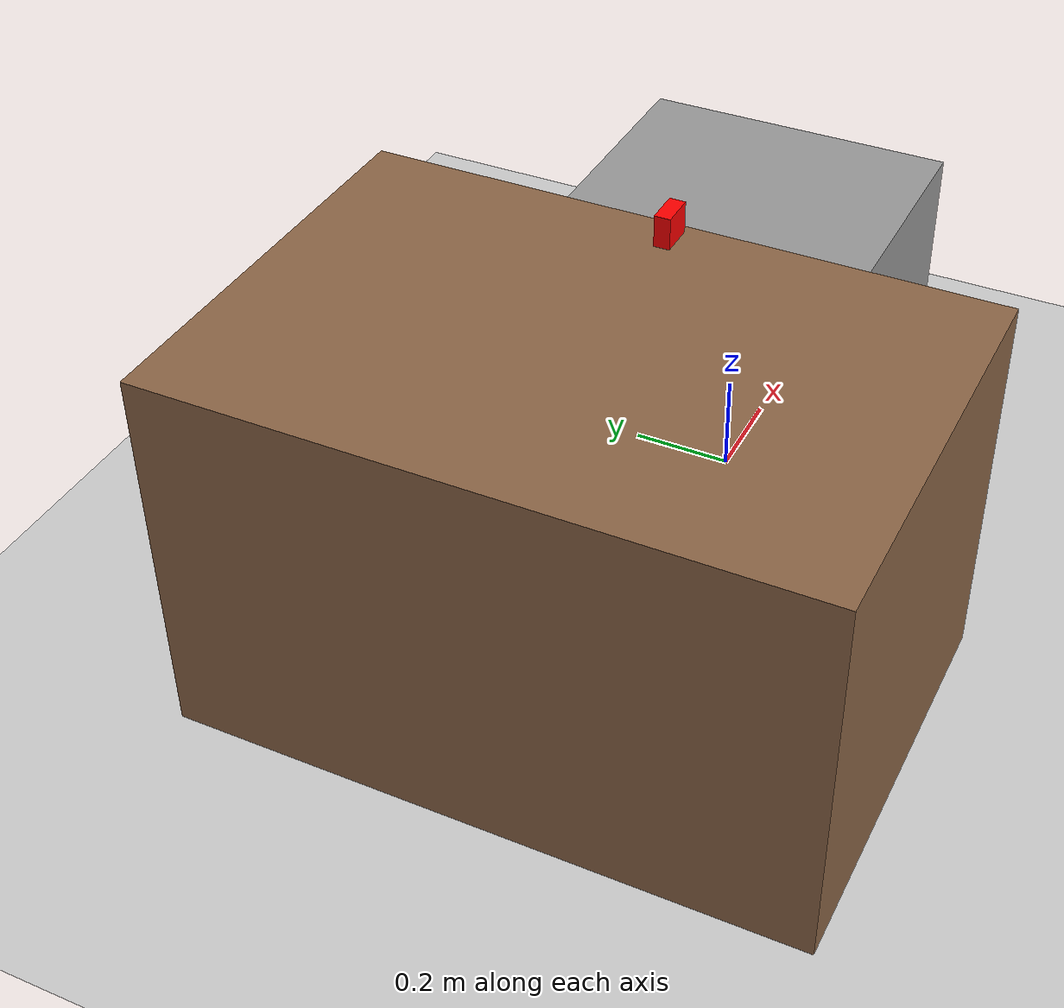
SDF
<?xml version="1.0"?>
<sdf version="1.6">
  <world name="assistive_lift_world">

    <physics name="1ms" type="ignored">
      <max_step_size>0.001</max_step_size>
      <real_time_factor>1.0</real_time_factor>
    </physics>

    <!-- Required Ignition systems -->
    <plugin filename="ignition-gazebo-forcetorque-system"
            name="ignition::gazebo::systems::ForceTorque"/>
    <plugin filename="ignition-gazebo-physics-system"
            name="ignition::gazebo::systems::Physics"/>
    <plugin filename="ignition-gazebo-user-commands-system"
            name="ignition::gazebo::systems::UserCommands"/>
    <plugin filename="ignition-gazebo-scene-broadcaster-system"
            name="ignition::gazebo::systems::SceneBroadcaster"/>
    <plugin filename="ignition-gazebo-contact-system"
            name="ignition::gazebo::systems::Contact"/>
    <plugin filename="ignition-gazebo-forcetorque-system"
            name="ignition::gazebo::systems::ForceTorque"/>
    <plugin filename="ignition-gazebo-apply-link-wrench-system"
            name="ignition::gazebo::systems::ApplyLinkWrench"/>
    <plugin filename="ignition-gazebo-sensors-system"
            name="ignition::gazebo::systems::Sensors">
      <render_engine>ogre2</render_engine>
    </plugin>
    <plugin filename="ignition-gazebo-imu-system"
            name="ignition::gazebo::systems::Imu"/>

    <!-- Sun light (required for camera sensors to see anything) -->
    <light type="directional" name="sun">
      <cast_shadows>true</cast_shadows>
      <pose>0 0 10 0 0 0</pose>
      <diffuse>0.8 0.8 0.8 1</diffuse>
      <specular>0.2 0.2 0.2 1</specular>
      <direction>-0.5 0.1 -0.9</direction>
    </light>

    <!-- Ground plane -->
    <model name="ground_plane">
      <static>true</static>
      <link name="link">
        <collision name="collision">
          <geometry>
            <plane>
              <normal>0 0 1</normal>
              <size>100 100</size>
            </plane>
          </geometry>
        </collision>
        <visual name="visual">
          <geometry>
            <plane>
              <normal>0 0 1</normal>
              <size>100 100</size>
            </plane>
          </geometry>
          <material>
            <ambient>0.8 0.8 0.8 1</ambient>
            <diffuse>0.8 0.8 0.8 1</diffuse>
            <specular>0.8 0.8 0.8 1</specular>
          </material>
        </visual>
      </link>
    </model>

    <model name="robot_table">
      <static>true</static>
      <pose>0 0 0.315 0 0 0</pose>
      <link name="table_link">
        <collision name="collision">
          <geometry>
            <box><size>0.6 0.6 0.63</size></box>
          </geometry>
        </collision>
        <visual name="visual">
          <geometry>
            <box><size>0.6 0.6 0.63</size></box>
          </geometry>
          <material>
            <ambient>0.55 0.55 0.55 1</ambient>
            <diffuse>0.6 0.6 0.6 1</diffuse>
            <specular>0.3 0.3 0.3 1</specular>
          </material>
        </visual>
      </link>
    </model>

    <!--
      Workspace table: standard table, 8 cm higher than robot table.
      Real dimensions: 0.8 x 1.2 x 0.74m (height).
      Position adjusted in Gazebo UI to match real-world layout.
    -->
    <model name="workspace_table">
      <static>true</static>
      <pose>-0.6993 0 0.37 0 0 0</pose>
      <link name="table_link">
        <collision name="collision">
          <geometry>
            <box><size>0.8 1.2 0.74</size></box>
          </geometry>
        </collision>
        <visual name="visual">
          <geometry>
            <box><size>0.8 1.2 0.74</size></box>
          </geometry>
          <material>
            <ambient>0.45 0.35 0.25 1</ambient>
            <diffuse>0.55 0.40 0.28 1</diffuse>
            <specular>0.2 0.15 0.1 1</specular>
          </material>
        </visual>
      </link>
    </model>

    <model name="grasp_box">
      <static>false</static>
      <pose>-0.35 0.0 0.77 0 0 0</pose>
      <link name="box_link">
        <inertial>
          <mass>0.15</mass>
          <inertia>
            <ixx>0.0000465</ixx><ixy>0</ixy><ixz>0</ixz>
            <iyy>0.0000591</iyy><iyz>0</iyz>
            <izz>0.0000381</izz>
          </inertia>
        </inertial>
        <collision name="collision">
          <geometry>
            <box><size>0.065 0.03 0.06</size></box>
          </geometry>
          <surface>
            <friction>
              <ode><mu>1.0</mu><mu2>1.0</mu2></ode>
            </friction>
          </surface>
        </collision>
        <visual name="visual">
          <geometry>
            <box><size>0.065 0.03 0.06</size></box>
          </geometry>
          <material>
            <ambient>1.0 0.0 0.0 1</ambient>
            <diffuse>1.0 0.0 0.0 1</diffuse>
            <specular>0.3 0.0 0.0 1</specular>
          </material>
        </visual>
      </link>
    </model>

  </world>
</sdf>
